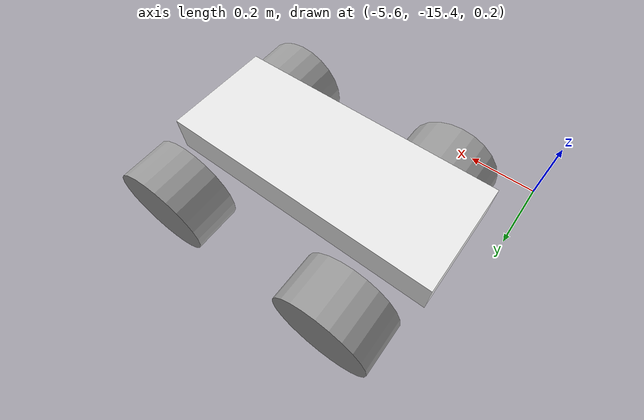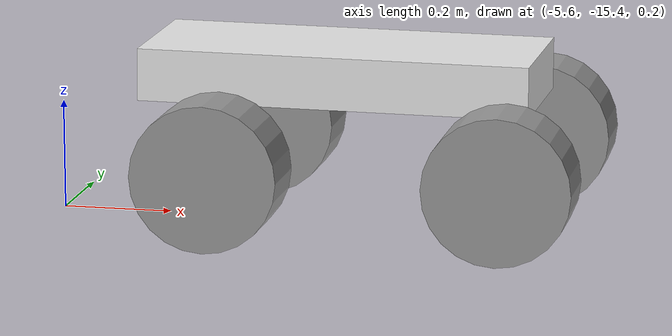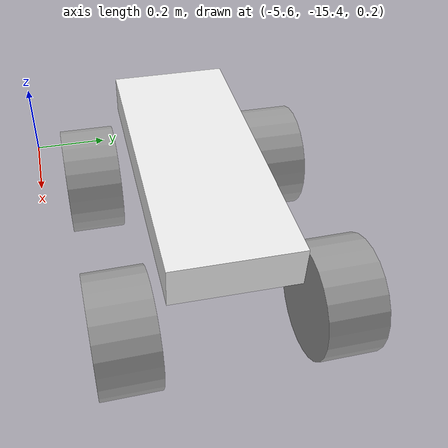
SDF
<sdf version="1.7">
 <world name="default">
  <gravity>0 0 -9.8</gravity>
  <magnetic_field>6e-06 2.3e-05 -4.2e-05</magnetic_field>
  <atmosphere type="adiabatic"/>
  <physics name="default_physics" default="0" type="ode">
   <max_step_size>0.001</max_step_size>
   <real_time_factor>1</real_time_factor>
   <real_time_update_rate>1000</real_time_update_rate>
  </physics>
  <scene><ambient>0.4 0.4 0.4 1</ambient><background>0.7 0.7 0.7 1</background><shadows>1</shadows></scene>
  <spherical_coordinates>
   <surface_model>EARTH_WGS84</surface_model>
   <latitude_deg>0</latitude_deg>
   <longitude_deg>0</longitude_deg>
   <elevation>0</elevation>
   <heading_deg>0</heading_deg>
  </spherical_coordinates>
  <model name="ground_plane">
   <pose>0 0 -735380 0 -0 0</pose>
   <link name="link">
    <pose>0 0 -1 0 -0 0</pose>
    <inertial>
     <inertia><ixx>1</ixx><ixy>0</ixy><ixz>0</ixz><iyy>1</iyy><iyz>0</iyz><izz>1</izz></inertia>
     <mass>1</mass>
    </inertial>
    <velocity>0 0 0 0 -0 0</velocity>
    <acceleration>0 0 0 0 -0 0</acceleration>
   </link>
   <scale>1 1 1</scale>
  </model>
  <light name="sun" type="directional">
   <pose>0 0 10 0 -0 0</pose>
   <diffuse>1 1 1 1</diffuse>
   <specular>1 1 1 1</specular>
   <attenuation>
    <range>1000</range>
    <constant>0.9</constant>
    <linear>0.01</linear>
    <quadratic>0.001</quadratic>
   </attenuation>
   <direction>-0.5 0.1 -0.9</direction>
   <spot><inner_angle>0</inner_angle><outer_angle>0</outer_angle><falloff>0</falloff></spot>
  </light>
  <light name="sun2" type="directional">
   <pose>0 0 10 0 -0 0</pose>
   <diffuse>1 1 1 1</diffuse>
   <specular>1 1 1 1</specular>
   <attenuation>
    <range>1000</range>
    <constant>0.9</constant>
    <linear>0.01</linear>
    <quadratic>0.001</quadratic>
   </attenuation>
   <direction>-0.5 0.1 -0.9</direction>
   <spot><inner_angle>0</inner_angle><outer_angle>0</outer_angle><falloff>0</falloff></spot>
  </light>
  <light name="user_point_light_0" type="point">
   <pose>1.49278 -15.5363 1 0 -0 0</pose>
   <diffuse>0 0.98039 0 1</diffuse>
   <specular>0.1 0.1 0.1 1</specular>
   <attenuation>
    <range>0.3</range>
    <constant>0.02</constant>
    <linear>0.01</linear>
    <quadratic>0</quadratic>
   </attenuation>
   <cast_shadows>0</cast_shadows>
   <direction>0 0 -1</direction>
   <spot><inner_angle>0</inner_angle><outer_angle>0</outer_angle><falloff>0</falloff></spot>
  </light>
  <light name="user_point_light_1" type="point">
   <pose>6.99411 -11.55 1 0 -0 0</pose>
   <diffuse>0 0.98039 0 1</diffuse>
   <specular>0.1 0.1 0.1 1</specular>
   <attenuation>
    <range>0.3</range>
    <constant>0.02</constant>
    <linear>0.01</linear>
    <quadratic>0</quadratic>
   </attenuation>
   <cast_shadows>0</cast_shadows>
   <direction>0 0 -1</direction>
   <spot><inner_angle>0</inner_angle><outer_angle>0</outer_angle><falloff>0</falloff></spot>
  </light>
  <light name="user_point_light_2" type="point">
   <pose>5.65528 -14.8924 1 0 -0 0</pose>
   <diffuse>0 0.98039 0 1</diffuse>
   <specular>0.1 0.1 0.1 1</specular>
   <attenuation>
    <range>0.3</range>
    <constant>0.02</constant>
    <linear>0.01</linear>
    <quadratic>0</quadratic>
   </attenuation>
   <cast_shadows>0</cast_shadows>
   <direction>0 0 -1</direction>
   <spot><inner_angle>0</inner_angle><outer_angle>0</outer_angle><falloff>0</falloff></spot>
  </light>
  <light name="user_point_light_3" type="point">
   <pose>3.6452 -17.3437 1 0 -0 0</pose>
   <diffuse>0 0.98039 0 1</diffuse>
   <specular>0.1 0.1 0.1 1</specular>
   <attenuation>
    <range>0.3</range>
    <constant>0.02</constant>
    <linear>0.01</linear>
    <quadratic>0</quadratic>
   </attenuation>
   <cast_shadows>0</cast_shadows>
   <direction>0 0 -1</direction>
   <spot><inner_angle>0</inner_angle><outer_angle>0</outer_angle><falloff>0</falloff></spot>
  </light>
  <audio><device>default</device></audio>
  <model name="robot">
   <link name="base_footprint">
    <inertial>
     <pose>0.245214 -0.000373 0.078372 0 -0 0</pose>
     <mass>24.73</mass>
     <inertia>
      <ixx>0.208333</ixx>
      <ixy>0</ixy>
      <ixz>5.55112e-17</ixz>
      <iyy>1.19271</iyy>
      <iyz>0</iyz>
      <izz>1.35938</izz>
     </inertia>
    </inertial>
    <collision name="base_footprint_fixed_joint_lump__chassis_link_collision">
     <pose>0.2778 0 0.1055 0 -0 0</pose>
     <geometry><box><size>0.75 0.3 0.1</size></box></geometry>
     <surface><friction><ode><mu>0.5</mu><mu2>0.5</mu2></ode></friction></surface>
    </collision>
    <visual name="base_footprint_fixed_joint_lump__chassis_link_visual">
     <pose>0.2078 0 0.1555 0 -0 0</pose>
     <geometry><box><size>0.75 0.3 0.1</size></box></geometry>
     <material>
      <script><name>Gazebo/White</name><uri>file://media/materials/scripts/gazebo.material</uri></script>
     </material>
    </visual>
    <sensor name="zed_camera" type="camera">
     <update_rate>30</update_rate>
     <camera name="camera">
      <horizontal_fov>0.870922</horizontal_fov>
      <image><width>640</width><height>480</height><format>B8G8R8</format></image>
      <clip><near>0.02</near><far>300</far></clip>
      <noise><type>gaussian</type><mean>0</mean><stddev>0.007</stddev></noise>
     </camera>
     <plugin name="camera_controller" filename="libgazebo_ros_camera.so">
      <alwaysOn>1</alwaysOn>
      <updateRate>30.0</updateRate>
      <cameraName>/camera</cameraName>
      <imageTopicName>rgb/image_rect_color</imageTopicName>
      <cameraInfoTopicName>rgb/camera_info</cameraInfoTopicName>
      <frameName>camera_link</frameName>
      <hackBaseline>0</hackBaseline>
      <distortionK1>0.0</distortionK1>
      <distortionK2>0.0</distortionK2>
      <distortionK3>0.0</distortionK3>
      <distortionT1>0.0</distortionT1>
      <distortionT2>0.0</distortionT2>
     </plugin>
     <pose>0 0 1 0 -0 0</pose>
    </sensor>
    <sensor name="laser_sensor" type="ray">
     <visualize>0</visualize>
     <update_rate>10</update_rate>
     <ray>
      <scan>
       <horizontal>
        <samples>360</samples>
        <resolution>1</resolution>
        <min_angle>-3.14159</min_angle>
        <max_angle>3.14159</max_angle>
       </horizontal>
       <vertical><samples>1</samples><min_angle>0</min_angle><max_angle>0</max_angle></vertical>
      </scan>
      <range><min>0.1</min><max>10</max><resolution>0.01</resolution></range>
      <noise><type>gaussian</type><mean>0</mean><stddev>0.01</stddev></noise>
     </ray>
     <plugin name="gazebo_ros_laser_controller" filename="libgazebo_ros_ray_sensor.so">
      <ros><namespace>/</namespace><remapping>~/out:=scan</remapping></ros>
      <output_type>sensor_msgs/LaserScan</output_type>
      <frame_name>lidar_link</frame_name>
     </plugin>
     <pose>0 0 0.6 0 -0 0</pose>
    </sensor>
   </link>
   <joint name="fr_left_steer_joint" type="revolute">
    <pose relative_to="base_footprint">0.54838 0.24619 0.002 0 -0 0</pose>
    <parent>base_footprint</parent>
    <child>fr_left_steer_link</child>
    <axis>
     <xyz>0 0 1</xyz>
     <limit><lower>-0.6</lower><upper>0.6</upper><effort>-1</effort><velocity>-1</velocity></limit>
     <dynamics><spring_reference>0</spring_reference><spring_stiffness>0</spring_stiffness></dynamics>
    </axis>
   </joint>
   <link name="fr_left_steer_link">
    <pose relative_to="fr_left_steer_joint">0 0 0 0 -0 0</pose>
    <inertial>
     <pose>-0.000278 0.016354 0 0 -0 0</pose>
     <mass>0.01</mass>
     <inertia>
      <ixx>6.53333e-05</ixx>
      <ixy>0</ixy>
      <ixz>0</ixz>
      <iyy>6.53333e-05</iyy>
      <iyz>0</iyz>
      <izz>9.8e-05</izz>
     </inertia>
    </inertial>
   </link>
   <joint name="fr_left_wheel_joint" type="revolute">
    <pose relative_to="fr_left_steer_link">0 0 0 1.5708 -0 0.016976</pose>
    <parent>fr_left_steer_link</parent>
    <child>fr_left_wheel_link</child>
    <axis>
     <xyz>0 0 -1</xyz>
     <limit><effort>200</effort><velocity>-1</velocity><lower>-1e+16</lower><upper>1e+16</upper></limit>
     <dynamics>
      <damping>0.5</damping>
      <friction>0.8</friction>
      <spring_reference>0</spring_reference>
      <spring_stiffness>0</spring_stiffness>
     </dynamics>
    </axis>
   </joint>
   <link name="fr_left_wheel_link">
    <pose relative_to="fr_left_wheel_joint">0 0 0 0 -0 0</pose>
    <inertial>
     <pose>-0 0 -0.016356 0 -0 0</pose>
     <mass>3</mass>
     <inertia><ixx>0.0196</ixx><ixy>0</ixy><ixz>0</ixz><iyy>0.0196</iyy><iyz>0</iyz><izz>0.0294</izz></inertia>
    </inertial>
    <collision name="fr_left_wheel_link_collision">
     <geometry><cylinder><length>0.14</length><radius>0.14</radius></cylinder></geometry>
     <surface><friction><ode><mu>1</mu><mu2>1</mu2></ode></friction></surface>
    </collision>
    <visual name="fr_left_wheel_link_visual">
     <geometry><cylinder><length>0.14</length><radius>0.14</radius></cylinder></geometry>
     <material>
      <script><name>Gazebo/Grey</name><uri>file://media/materials/scripts/gazebo.material</uri></script>
     </material>
    </visual>
   </link>
   <joint name="fr_right_steer_joint" type="revolute">
    <pose relative_to="base_footprint">0.54999 -0.24619 0.002 0 -0 0</pose>
    <parent>base_footprint</parent>
    <child>fr_right_steer_link</child>
    <axis>
     <xyz>0 0 1</xyz>
     <limit><lower>-0.6</lower><upper>0.6</upper><effort>-1</effort><velocity>-1</velocity></limit>
     <dynamics><spring_reference>0</spring_reference><spring_stiffness>0</spring_stiffness></dynamics>
    </axis>
   </joint>
   <link name="fr_right_steer_link">
    <pose relative_to="fr_right_steer_joint">0 0 0 0 -0 0</pose>
    <inertial>
     <pose>0.000275 -0.016354 -0 0 -0 0</pose>
     <mass>0.01</mass>
     <inertia>
      <ixx>6.53333e-05</ixx>
      <ixy>0</ixy>
      <ixz>0</ixz>
      <iyy>6.53333e-05</iyy>
      <iyz>0</iyz>
      <izz>9.8e-05</izz>
     </inertia>
    </inertial>
   </link>
   <joint name="fr_right_wheel_joint" type="revolute">
    <pose relative_to="fr_right_steer_link">0 0 0 -1.5708 0 0.016976</pose>
    <parent>fr_right_steer_link</parent>
    <child>fr_right_wheel_link</child>
    <axis>
     <xyz>0 0 1</xyz>
     <limit><effort>200</effort><velocity>-1</velocity><lower>-1e+16</lower><upper>1e+16</upper></limit>
     <dynamics>
      <damping>0.5</damping>
      <friction>0.8</friction>
      <spring_reference>0</spring_reference>
      <spring_stiffness>0</spring_stiffness>
     </dynamics>
    </axis>
   </joint>
   <link name="fr_right_wheel_link">
    <pose relative_to="fr_right_wheel_joint">0 0 0 0 -0 0</pose>
    <inertial>
     <pose>0.000275 0 -0.016354 0 -0 0</pose>
     <mass>3</mass>
     <inertia><ixx>0.0196</ixx><ixy>0</ixy><ixz>0</ixz><iyy>0.0196</iyy><iyz>0</iyz><izz>0.0294</izz></inertia>
    </inertial>
    <collision name="fr_right_wheel_link_collision">
     <geometry><cylinder><length>0.14</length><radius>0.14</radius></cylinder></geometry>
     <surface><friction><ode><mu>1</mu><mu2>1</mu2></ode></friction></surface>
    </collision>
    <visual name="fr_right_wheel_link_visual">
     <geometry><cylinder><length>0.14</length><radius>0.14</radius></cylinder></geometry>
     <material>
      <script><name>Gazebo/Grey</name><uri>file://media/materials/scripts/gazebo.material</uri></script>
     </material>
    </visual>
   </link>
   <joint name="re_left_wheel_joint" type="revolute">
    <pose relative_to="base_footprint">0 0.252 -0.0025 1.5708 -0 0</pose>
    <parent>base_footprint</parent>
    <child>re_left_wheel_link</child>
    <axis>
     <xyz>0 0 -1</xyz>
     <limit><effort>70</effort><velocity>-1</velocity><lower>-1e+16</lower><upper>1e+16</upper></limit>
     <dynamics>
      <damping>0.5</damping>
      <friction>0.8</friction>
      <spring_reference>0</spring_reference>
      <spring_stiffness>0</spring_stiffness>
     </dynamics>
    </axis>
   </joint>
   <link name="re_left_wheel_link">
    <pose relative_to="re_left_wheel_joint">0 0 0 0 -0 0</pose>
    <inertial>
     <pose>0 2e-06 -0.010284 0 -0 0</pose>
     <mass>3</mass>
     <inertia><ixx>0.0196</ixx><ixy>0</ixy><ixz>0</ixz><iyy>0.0196</iyy><iyz>0</iyz><izz>0.0294</izz></inertia>
    </inertial>
    <collision name="re_left_wheel_link_collision">
     <geometry><cylinder><length>0.14</length><radius>0.14</radius></cylinder></geometry>
     <surface><friction><ode><mu>1</mu><mu2>1</mu2></ode></friction></surface>
    </collision>
    <visual name="re_left_wheel_link_visual">
     <geometry><cylinder><length>0.14</length><radius>0.14</radius></cylinder></geometry>
     <material>
      <script><name>Gazebo/Grey</name><uri>file://media/materials/scripts/gazebo.material</uri></script>
     </material>
    </visual>
   </link>
   <joint name="re_right_wheel_joint" type="revolute">
    <pose relative_to="base_footprint">0 -0.252 -0.0025 -1.5708 0 0</pose>
    <parent>base_footprint</parent>
    <child>re_right_wheel_link</child>
    <axis>
     <xyz>0 0 1</xyz>
     <limit><effort>70</effort><velocity>-1</velocity><lower>-1e+16</lower><upper>1e+16</upper></limit>
     <dynamics>
      <damping>0.5</damping>
      <friction>0.8</friction>
      <spring_reference>0</spring_reference>
      <spring_stiffness>0</spring_stiffness>
     </dynamics>
    </axis>
   </joint>
   <link name="re_right_wheel_link">
    <pose relative_to="re_right_wheel_joint">0 0 0 0 -0 0</pose>
    <inertial>
     <mass>3</mass>
     <inertia><ixx>0.0196</ixx><ixy>0</ixy><ixz>0</ixz><iyy>0.0196</iyy><iyz>0</iyz><izz>0.0294</izz></inertia>
    </inertial>
    <collision name="re_right_wheel_link_collision">
     <geometry><cylinder><length>0.14</length><radius>0.14</radius></cylinder></geometry>
     <surface><friction><ode><mu>1</mu><mu2>1</mu2></ode></friction></surface>
    </collision>
    <visual name="re_right_wheel_link_visual">
     <geometry><cylinder><length>0.14</length><radius>0.14</radius></cylinder></geometry>
     <material>
      <script><name>Gazebo/Grey</name><uri>file://media/materials/scripts/gazebo.material</uri></script>
     </material>
    </visual>
   </link>
   <joint name="virtual_steering_wheel_joint" type="revolute">
    <pose relative_to="base_footprint">-0.1122 0 0.1555 0 -0 0</pose>
    <parent>base_footprint</parent>
    <child>virtual_steer_link</child>
    <axis>
     <xyz>-1 0 0</xyz>
     <limit><lower>-3</lower><upper>3</upper><effort>200</effort><velocity>20</velocity></limit>
     <dynamics><spring_reference>0</spring_reference><spring_stiffness>0</spring_stiffness></dynamics>
    </axis>
   </joint>
   <link name="virtual_steer_link">
    <pose relative_to="virtual_steering_wheel_joint">0 0 0 0 -0 0</pose>
    <inertial>
     <mass>0.001</mass>
     <inertia><ixx>0</ixx><ixy>0</ixy><ixz>0</ixz><iyy>0</iyy><iyz>0</iyz><izz>0</izz></inertia>
    </inertial>
    <visual name="virtual_steer_link_visual">
     <geometry><box><size>0.01 0.15 0.075</size></box></geometry>
     <material>
      <script><name>Gazebo/Yellow</name><uri>file://media/materials/scripts/gazebo.material</uri></script>
     </material>
    </visual>
   </link>
   <plugin name="gazebo_ros_joint_state_publisher" filename="libgazebo_ros_joint_state_publisher.so">
    <update_rate>100</update_rate>
    <joint_name>fr_right_steer_joint</joint_name>
    <joint_name>fr_right_wheel_joint</joint_name>
    <joint_name>fr_left_steer_joint</joint_name>
    <joint_name>fr_left_wheel_joint</joint_name>
    <joint_name>re_right_wheel_joint</joint_name>
    <joint_name>re_left_wheel_joint</joint_name>
    <joint_name>virtual_steering_wheel_joint</joint_name>
   </plugin>
   <plugin name="gazebo_ros_joint_pose_trajectory" filename="libgazebo_ros_joint_pose_trajectory.so">
    <update_rate>2</update_rate>
   </plugin>
   <static>0</static>
   <plugin name="gazebo_ackermann_drive" filename="libgazebo_ros_ackermann_drive.so">
    <ros>
     <remapping>cmd_vel:=cmd_vel</remapping>
     <remapping>odom:=odom/bot</remapping>
     <remapping>distance:=distance/bot</remapping>
    </ros>
    <update_rate>100.0</update_rate>
    <front_left_joint>fr_left_wheel_joint</front_left_joint>
    <front_right_joint>fr_right_wheel_joint</front_right_joint>
    <rear_left_joint>re_left_wheel_joint</rear_left_joint>
    <rear_right_joint>re_right_wheel_joint</rear_right_joint>
    <left_steering_joint>fr_left_steer_joint</left_steering_joint>
    <right_steering_joint>fr_right_steer_joint</right_steering_joint>
    <steering_wheel_joint>virtual_steering_wheel_joint</steering_wheel_joint>
    <max_steer>0.383972</max_steer>
    <max_steering_angle>1.570796</max_steering_angle>
    <max_speed>5</max_speed>
    <left_steering_pid_gain>1500 0 1</left_steering_pid_gain>
    <left_steering_i_range>0 0</left_steering_i_range>
    <right_steering_pid_gain>1500 0 1</right_steering_pid_gain>
    <right_steering_i_range>0 0</right_steering_i_range>
    <linear_velocity_pid_gain>1500 0 1</linear_velocity_pid_gain>
    <linear_velocity_i_range>0 0</linear_velocity_i_range>
    <publish_odom>1</publish_odom>
    <publish_odom_tf>1</publish_odom_tf>
    <publish_wheel_tf>0</publish_wheel_tf>
    <publish_distance>1</publish_distance>
    <odometry_frame>odom</odometry_frame>
    <robot_base_frame>base_footprint</robot_base_frame>
   </plugin>
   <pose>-5.35874 -15.0041 0.244359 -1e-06 0.008513 -0.003048</pose>
  </model>
 </world>
</sdf>
